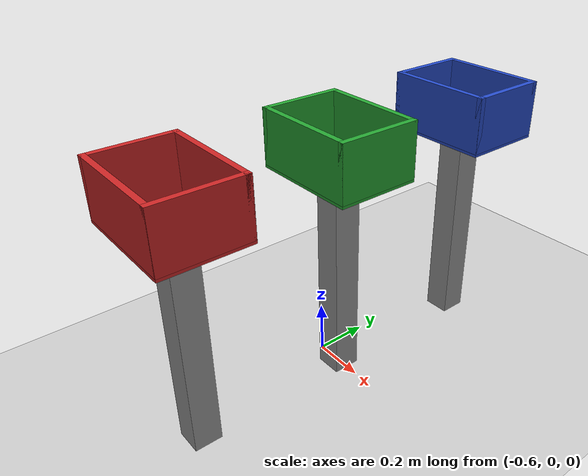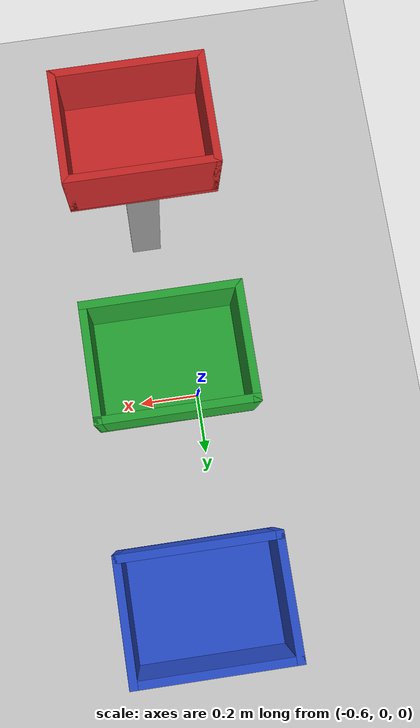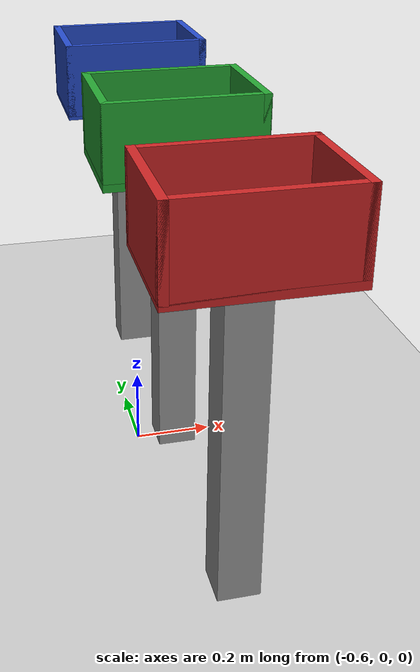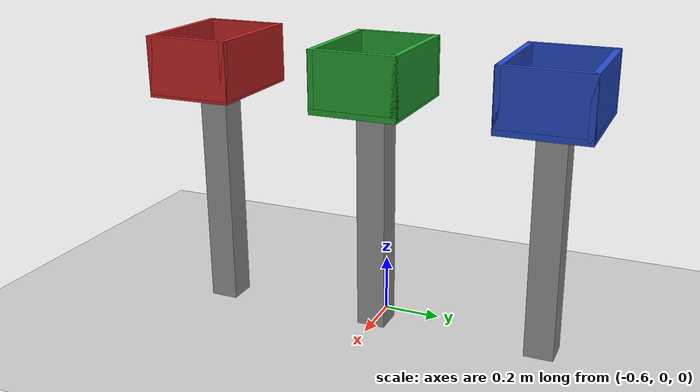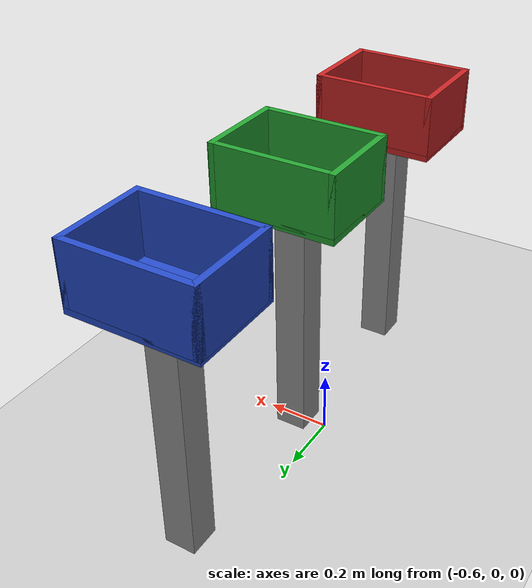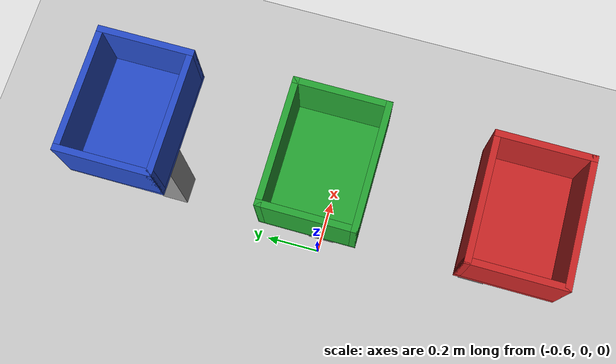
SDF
<sdf version="1.6">
 <world name="default">
  <include><uri>model://sun</uri></include>
  <include><uri>model://ground_plane</uri></include>
  <model name="bin_red">
   <pose>-0.5 -0.6 0.8 0 0 0</pose>
   <static>true</static>
   <link name="link">
    <visual name="bottom">
     <geometry><box><size>0.4 0.3 0.02</size></box></geometry>
     <material>
      <script><name>Gazebo/Red</name><uri>file://media/materials/scripts/gazebo.material</uri></script>
     </material>
    </visual>
    <collision name="bottom_col"><geometry><box><size>0.4 0.3 0.02</size></box></geometry></collision>
    <visual name="w1">
     <pose>0.19 0 0.1 0 0 0</pose>
     <geometry><box><size>0.02 0.3 0.2</size></box></geometry>
     <material>
      <script><name>Gazebo/Red</name><uri>file://media/materials/scripts/gazebo.material</uri></script>
     </material>
    </visual>
    <collision name="c1">
     <pose>0.19 0 0.1 0 0 0</pose>
     <geometry><box><size>0.02 0.3 0.2</size></box></geometry>
    </collision>
    <visual name="w2">
     <pose>-0.19 0 0.1 0 0 0</pose>
     <geometry><box><size>0.02 0.3 0.2</size></box></geometry>
     <material>
      <script><name>Gazebo/Red</name><uri>file://media/materials/scripts/gazebo.material</uri></script>
     </material>
    </visual>
    <collision name="c2">
     <pose>-0.19 0 0.1 0 0 0</pose>
     <geometry><box><size>0.02 0.3 0.2</size></box></geometry>
    </collision>
    <visual name="w3">
     <pose>0 0.14 0.1 0 0 0</pose>
     <geometry><box><size>0.4 0.02 0.2</size></box></geometry>
     <material>
      <script><name>Gazebo/Red</name><uri>file://media/materials/scripts/gazebo.material</uri></script>
     </material>
    </visual>
    <collision name="c3">
     <pose>0 0.14 0.1 0 0 0</pose>
     <geometry><box><size>0.4 0.02 0.2</size></box></geometry>
    </collision>
    <visual name="w4">
     <pose>0 -0.14 0.1 0 0 0</pose>
     <geometry><box><size>0.4 0.02 0.2</size></box></geometry>
     <material>
      <script><name>Gazebo/Red</name><uri>file://media/materials/scripts/gazebo.material</uri></script>
     </material>
    </visual>
    <collision name="c4">
     <pose>0 -0.14 0.1 0 0 0</pose>
     <geometry><box><size>0.4 0.02 0.2</size></box></geometry>
    </collision>
    <visual name="stand">
     <pose>0 0 -0.4 0 0 0</pose>
     <geometry><box><size>0.1 0.1 0.8</size></box></geometry>
     <material>
      <script><name>Gazebo/Grey</name><uri>file://media/materials/scripts/gazebo.material</uri></script>
     </material>
    </visual>
   </link>
  </model>
  <model name="bin_green">
   <pose>-0.5 0.0 0.8 0 0 0</pose>
   <static>true</static>
   <link name="link">
    <visual name="bottom">
     <geometry><box><size>0.4 0.3 0.02</size></box></geometry>
     <material>
      <script><name>Gazebo/Green</name><uri>file://media/materials/scripts/gazebo.material</uri></script>
     </material>
    </visual>
    <collision name="bottom_col"><geometry><box><size>0.4 0.3 0.02</size></box></geometry></collision>
    <visual name="w1">
     <pose>0.19 0 0.1 0 0 0</pose>
     <geometry><box><size>0.02 0.3 0.2</size></box></geometry>
     <material>
      <script><name>Gazebo/Green</name><uri>file://media/materials/scripts/gazebo.material</uri></script>
     </material>
    </visual>
    <collision name="c1">
     <pose>0.19 0 0.1 0 0 0</pose>
     <geometry><box><size>0.02 0.3 0.2</size></box></geometry>
    </collision>
    <visual name="w2">
     <pose>-0.19 0 0.1 0 0 0</pose>
     <geometry><box><size>0.02 0.3 0.2</size></box></geometry>
     <material>
      <script><name>Gazebo/Green</name><uri>file://media/materials/scripts/gazebo.material</uri></script>
     </material>
    </visual>
    <collision name="c2">
     <pose>-0.19 0 0.1 0 0 0</pose>
     <geometry><box><size>0.02 0.3 0.2</size></box></geometry>
    </collision>
    <visual name="w3">
     <pose>0 0.14 0.1 0 0 0</pose>
     <geometry><box><size>0.4 0.02 0.2</size></box></geometry>
     <material>
      <script><name>Gazebo/Green</name><uri>file://media/materials/scripts/gazebo.material</uri></script>
     </material>
    </visual>
    <collision name="c3">
     <pose>0 0.14 0.1 0 0 0</pose>
     <geometry><box><size>0.4 0.02 0.2</size></box></geometry>
    </collision>
    <visual name="w4">
     <pose>0 -0.14 0.1 0 0 0</pose>
     <geometry><box><size>0.4 0.02 0.2</size></box></geometry>
     <material>
      <script><name>Gazebo/Green</name><uri>file://media/materials/scripts/gazebo.material</uri></script>
     </material>
    </visual>
    <collision name="c4">
     <pose>0 -0.14 0.1 0 0 0</pose>
     <geometry><box><size>0.4 0.02 0.2</size></box></geometry>
    </collision>
    <visual name="stand">
     <pose>0 0 -0.4 0 0 0</pose>
     <geometry><box><size>0.1 0.1 0.8</size></box></geometry>
     <material>
      <script><name>Gazebo/Grey</name><uri>file://media/materials/scripts/gazebo.material</uri></script>
     </material>
    </visual>
   </link>
  </model>
  <model name="bin_blue">
   <pose>-0.5 0.6 0.8 0 0 0</pose>
   <static>true</static>
   <link name="link">
    <visual name="bottom">
     <geometry><box><size>0.4 0.3 0.02</size></box></geometry>
     <material>
      <script><name>Gazebo/Blue</name><uri>file://media/materials/scripts/gazebo.material</uri></script>
     </material>
    </visual>
    <collision name="bottom_col"><geometry><box><size>0.4 0.3 0.02</size></box></geometry></collision>
    <visual name="w1">
     <pose>0.19 0 0.1 0 0 0</pose>
     <geometry><box><size>0.02 0.3 0.2</size></box></geometry>
     <material>
      <script><name>Gazebo/Blue</name><uri>file://media/materials/scripts/gazebo.material</uri></script>
     </material>
    </visual>
    <collision name="c1">
     <pose>0.19 0 0.1 0 0 0</pose>
     <geometry><box><size>0.02 0.3 0.2</size></box></geometry>
    </collision>
    <visual name="w2">
     <pose>-0.19 0 0.1 0 0 0</pose>
     <geometry><box><size>0.02 0.3 0.2</size></box></geometry>
     <material>
      <script><name>Gazebo/Blue</name><uri>file://media/materials/scripts/gazebo.material</uri></script>
     </material>
    </visual>
    <collision name="c2">
     <pose>-0.19 0 0.1 0 0 0</pose>
     <geometry><box><size>0.02 0.3 0.2</size></box></geometry>
    </collision>
    <visual name="w3">
     <pose>0 0.14 0.1 0 0 0</pose>
     <geometry><box><size>0.4 0.02 0.2</size></box></geometry>
     <material>
      <script><name>Gazebo/Blue</name><uri>file://media/materials/scripts/gazebo.material</uri></script>
     </material>
    </visual>
    <collision name="c3">
     <pose>0 0.14 0.1 0 0 0</pose>
     <geometry><box><size>0.4 0.02 0.2</size></box></geometry>
    </collision>
    <visual name="w4">
     <pose>0 -0.14 0.1 0 0 0</pose>
     <geometry><box><size>0.4 0.02 0.2</size></box></geometry>
     <material>
      <script><name>Gazebo/Blue</name><uri>file://media/materials/scripts/gazebo.material</uri></script>
     </material>
    </visual>
    <collision name="c4">
     <pose>0 -0.14 0.1 0 0 0</pose>
     <geometry><box><size>0.4 0.02 0.2</size></box></geometry>
    </collision>
    <visual name="stand">
     <pose>0 0 -0.4 0 0 0</pose>
     <geometry><box><size>0.1 0.1 0.8</size></box></geometry>
     <material>
      <script><name>Gazebo/Grey</name><uri>file://media/materials/scripts/gazebo.material</uri></script>
     </material>
    </visual>
   </link>
  </model>
  <physics type="ode">
   <max_step_size>0.001</max_step_size>
   <real_time_factor>1</real_time_factor>
   <real_time_update_rate>1000</real_time_update_rate>
  </physics>
 </world>
</sdf>
